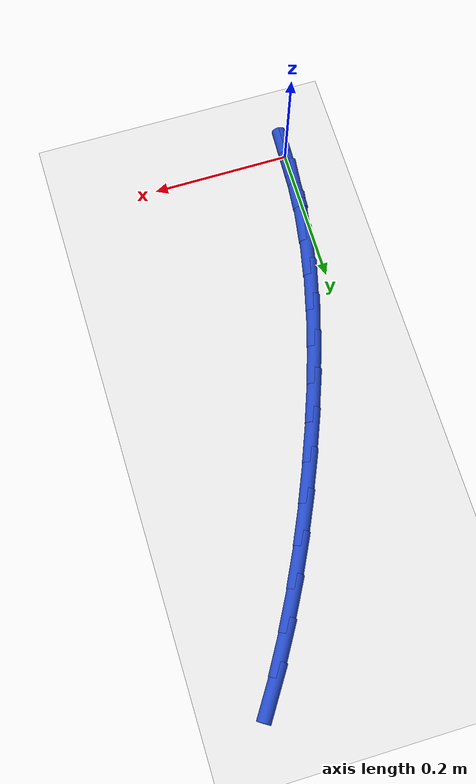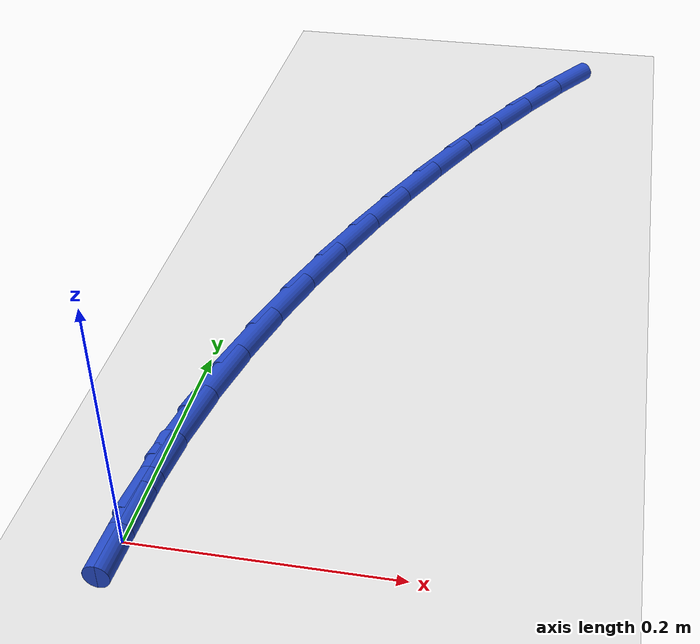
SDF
<sdf version="1.6">
 <world name="default">
  <model name="ground_plane">
   <static>1</static>
   <link name="link">
    <collision name="collision">
     <geometry><plane><normal>0 0 1</normal><size>100 100</size></plane></geometry>
     <surface><friction><ode><mu>100</mu><mu2>50</mu2></ode></friction></surface>
    </collision>
    <visual name="visual">
     <cast_shadows>0</cast_shadows>
     <geometry><plane><normal>0 0 1</normal><size>100 100</size></plane></geometry>
     <material>
      <script><uri>file://media/materials/scripts/gazebo.material</uri><name>Gazebo/WhiteGlow</name></script>
     </material>
    </visual>
   </link>
  </model>
  <model name="line">
   <link name="link_0">
    <pose>2.2551405187698492e-17 8.326672684688674e-17 0.01 0 1.57 1.5280635900219666</pose>
    <collision name="collision">
     <geometry><cylinder><radius>0.01</radius><length>0.08</length></cylinder></geometry>
    </collision>
    <visual name="visual">
     <material>
      <script><name>Gazebo/Blue</name><uri>file://media/materials/scripts/gazebo.material</uri></script>
     </material>
     <geometry><cylinder><radius>0.01</radius><length>0.08</length></cylinder></geometry>
    </visual>
   </link>
   <link name="link_1">
    <pose>0.002290361997818722 0.05356473438542237 0.01 0 1.57 1.4670188387051344</pose>
    <collision name="collision">
     <geometry><cylinder><radius>0.01</radius><length>0.08</length></cylinder></geometry>
    </collision>
    <visual name="visual">
     <material>
      <script><name>Gazebo/Blue</name><uri>file://media/materials/scripts/gazebo.material</uri></script>
     </material>
     <geometry><cylinder><radius>0.01</radius><length>0.08</length></cylinder></geometry>
    </visual>
   </link>
   <link name="link_2">
    <pose>0.007856314260132209 0.1070055785124294 0.01 0 1.57 1.4110822218781334</pose>
    <collision name="collision">
     <geometry><cylinder><radius>0.01</radius><length>0.08</length></cylinder></geometry>
    </collision>
    <visual name="visual">
     <material>
      <script><name>Gazebo/Blue</name><uri>file://media/materials/scripts/gazebo.material</uri></script>
     </material>
     <geometry><cylinder><radius>0.01</radius><length>0.08</length></cylinder></geometry>
    </visual>
   </link>
   <link name="link_3">
    <pose>0.016448841105608347 0.1603467734238678 0.01 0 1.57 1.3604931127275217</pose>
    <collision name="collision">
     <geometry><cylinder><radius>0.01</radius><length>0.08</length></cylinder></geometry>
    </collision>
    <visual name="visual">
     <material>
      <script><name>Gazebo/Blue</name><uri>file://media/materials/scripts/gazebo.material</uri></script>
     </material>
     <geometry><cylinder><radius>0.01</radius><length>0.08</length></cylinder></geometry>
    </visual>
   </link>
   <link name="link_4">
    <pose>0.027818926852915017 0.2136125601625845 0.01 0 1.57 1.3153226943522283</pose>
    <collision name="collision">
     <geometry><cylinder><radius>0.01</radius><length>0.08</length></cylinder></geometry>
    </collision>
    <visual name="visual">
     <material>
      <script><name>Gazebo/Blue</name><uri>file://media/materials/scripts/gazebo.material</uri></script>
     </material>
     <geometry><cylinder><radius>0.01</radius><length>0.08</length></cylinder></geometry>
    </visual>
   </link>
   <link name="link_5">
    <pose>0.041717555820720106 0.2668271797714263 0.01 0 1.57 1.275517288848921</pose>
    <collision name="collision">
     <geometry><cylinder><radius>0.01</radius><length>0.08</length></cylinder></geometry>
    </collision>
    <visual name="visual">
     <material>
      <script><name>Gazebo/Blue</name><uri>file://media/materials/scripts/gazebo.material</uri></script>
     </material>
     <geometry><cylinder><radius>0.01</radius><length>0.08</length></cylinder></geometry>
    </visual>
   </link>
   <link name="link_6">
    <pose>0.05789571232769149 0.3200148732932398 0.01 0 1.57 1.2409397017827632</pose>
    <collision name="collision">
     <geometry><cylinder><radius>0.01</radius><length>0.08</length></cylinder></geometry>
    </collision>
    <visual name="visual">
     <material>
      <script><name>Gazebo/Blue</name><uri>file://media/materials/scripts/gazebo.material</uri></script>
     </material>
     <geometry><cylinder><radius>0.01</radius><length>0.08</length></cylinder></geometry>
    </visual>
   </link>
   <link name="link_7">
    <pose>0.076104380692497 0.3731998817708719 0.01 0 1.57 1.2114045515582856</pose>
    <collision name="collision">
     <geometry><cylinder><radius>0.01</radius><length>0.08</length></cylinder></geometry>
    </collision>
    <visual name="visual">
     <material>
      <script><name>Gazebo/Blue</name><uri>file://media/materials/scripts/gazebo.material</uri></script>
     </material>
     <geometry><cylinder><radius>0.01</radius><length>0.08</length></cylinder></geometry>
    </visual>
   </link>
   <link name="link_8">
    <pose>0.09609454523380462 0.42640644624716945 0.01 0 1.57 1.1860031495152337</pose>
    <collision name="collision">
     <geometry><cylinder><radius>0.01</radius><length>0.08</length></cylinder></geometry>
    </collision>
    <visual name="visual">
     <material>
      <script><name>Gazebo/Blue</name><uri>file://media/materials/scripts/gazebo.material</uri></script>
     </material>
     <geometry><cylinder><radius>0.01</radius><length>0.08</length></cylinder></geometry>
    </visual>
   </link>
   <link name="link_9">
    <pose>0.11764783165384408 0.4796268999807252 0.01 0 1.57 1.1602141189880262</pose>
    <collision name="collision">
     <geometry><cylinder><radius>0.01</radius><length>0.08</length></cylinder></geometry>
    </collision>
    <visual name="visual">
     <material>
      <script><name>Gazebo/Blue</name><uri>file://media/materials/scripts/gazebo.material</uri></script>
     </material>
     <geometry><cylinder><radius>0.01</radius><length>0.08</length></cylinder></geometry>
    </visual>
   </link>
   <link name="link_10">
    <pose>0.1407335693601218 0.5326581147778282 0.01 0 1.57 1.132166868489333</pose>
    <collision name="collision">
     <geometry><cylinder><radius>0.01</radius><length>0.08</length></cylinder></geometry>
    </collision>
    <visual name="visual">
     <material>
      <script><name>Gazebo/Blue</name><uri>file://media/materials/scripts/gazebo.material</uri></script>
     </material>
     <geometry><cylinder><radius>0.01</radius><length>0.08</length></cylinder></geometry>
    </visual>
   </link>
   <link name="link_11">
    <pose>0.16539213236818645 0.5852229815809066 0.01 0 1.57 1.101587255370738</pose>
    <collision name="collision">
     <geometry><cylinder><radius>0.01</radius><length>0.08</length></cylinder></geometry>
    </collision>
    <visual name="visual">
     <material>
      <script><name>Gazebo/Blue</name><uri>file://media/materials/scripts/gazebo.material</uri></script>
     </material>
     <geometry><cylinder><radius>0.01</radius><length>0.08</length></cylinder></geometry>
    </visual>
   </link>
   <link name="link_12">
    <pose>0.19166402845400904 0.6370442520436805 0.01 0 1.57 1.0681722411529264</pose>
    <collision name="collision">
     <geometry><cylinder><radius>0.01</radius><length>0.08</length></cylinder></geometry>
    </collision>
    <visual name="visual">
     <material>
      <script><name>Gazebo/Blue</name><uri>file://media/materials/scripts/gazebo.material</uri></script>
     </material>
     <geometry><cylinder><radius>0.01</radius><length>0.08</length></cylinder></geometry>
    </visual>
   </link>
   <link name="link_13">
    <pose>0.21958976539356062 0.6878446778198715 0.01 0 1.57 1.0315855189300964</pose>
    <collision name="collision">
     <geometry><cylinder><radius>0.01</radius><length>0.08</length></cylinder></geometry>
    </collision>
    <visual name="visual">
     <material>
      <script><name>Gazebo/Blue</name><uri>file://media/materials/scripts/gazebo.material</uri></script>
     </material>
     <geometry><cylinder><radius>0.01</radius><length>0.08</length></cylinder></geometry>
    </visual>
   </link>
   <link name="link_14">
    <pose>0.24920985096281206 0.7373470105631996 0.01 0 1.57 0.9914580876117127</pose>
    <collision name="collision">
     <geometry><cylinder><radius>0.01</radius><length>0.08</length></cylinder></geometry>
    </collision>
    <visual name="visual">
     <material>
      <script><name>Gazebo/Blue</name><uri>file://media/materials/scripts/gazebo.material</uri></script>
     </material>
     <geometry><cylinder><radius>0.01</radius><length>0.08</length></cylinder></geometry>
    </visual>
   </link>
   <link name="link_140">
    <pose>2.2551405187698492e-17 2.220446049250313e-16 0.01 0 1.57 1.5268222699327942</pose>
    <collision name="collision">
     <geometry><cylinder><radius>0.01</radius><length>0.08</length></cylinder></geometry>
    </collision>
    <visual name="visual">
     <material>
      <script><name>Gazebo/Blue</name><uri>file://media/materials/scripts/gazebo.material</uri></script>
     </material>
     <geometry><cylinder><radius>0.01</radius><length>0.08</length></cylinder></geometry>
    </visual>
   </link>
   <link name="link_141">
    <pose>0.0023561774078395582 0.0535465374982407 0.01 0 1.57 1.5268222699327942</pose>
    <collision name="collision">
     <geometry><cylinder><radius>0.01</radius><length>0.08</length></cylinder></geometry>
    </collision>
    <visual name="visual">
     <material>
      <script><name>Gazebo/Blue</name><uri>file://media/materials/scripts/gazebo.material</uri></script>
     </material>
     <geometry><cylinder><radius>0.01</radius><length>0.08</length></cylinder></geometry>
    </visual>
   </link>
  </model>
 </world>
</sdf>
